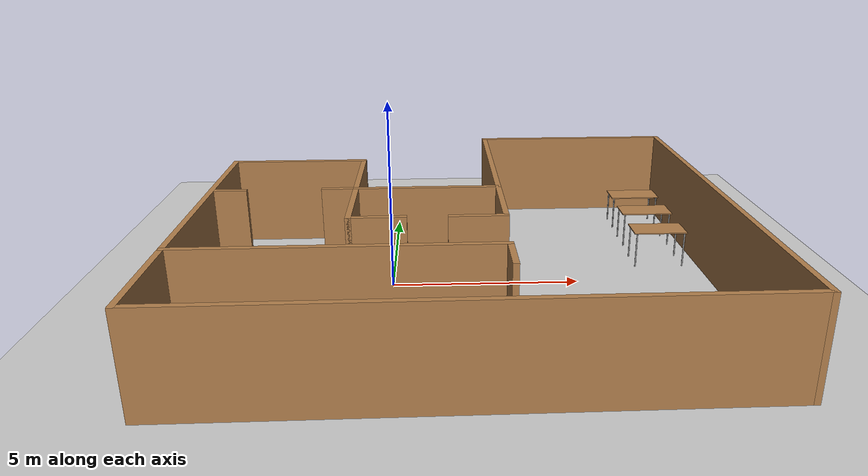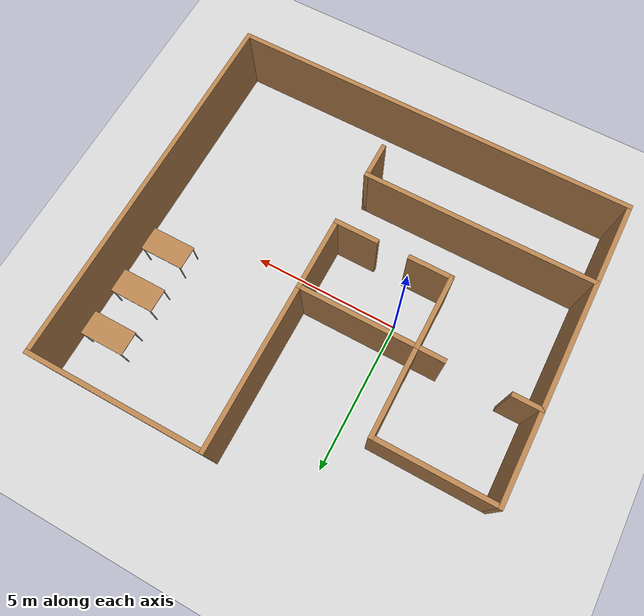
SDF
<sdf version="1.6">
 <world name="default">
  <model name="ground_plane">
   <static>1</static>
   <link name="link">
    <collision name="collision">
     <geometry><plane><normal>0 0 1</normal><size>100 100</size></plane></geometry>
     <surface><friction><ode><mu>100</mu><mu2>50</mu2></ode></friction></surface>
    </collision>
    <visual name="visual">
     <cast_shadows>0</cast_shadows>
     <geometry><plane><normal>0 0 1</normal><size>100 100</size></plane></geometry>
     <material>
      <script><uri>file://media/materials/scripts/gazebo.material</uri><name>Gazebo/Grey</name></script>
     </material>
    </visual>
   </link>
  </model>
  <model name="my_room">
   <link name="Wall_0">
    <pose>-4.84997 3.67511 0 0 -0 3.14154</pose>
    <visual name="Wall_0_Visual">
     <pose>0 0 1.25 0 -0 0</pose>
     <geometry><box><size>4 0.15 2.5</size></box></geometry>
     <material>
      <script><uri>file://media/materials/scripts/gazebo.material</uri><name>Gazebo/Wood</name></script>
      <ambient>1 1 1 1</ambient>
      <shader type="pixel"/>
      <diffuse>1 1 1 1</diffuse>
      <specular>0.2 0.2 0.2 1</specular>
      <emissive>0 0 0 1</emissive>
     </material>
     <meta><layer>0</layer></meta>
    </visual>
    <collision name="Wall_0_Collision">
     <pose>0 0 1.25 0 -0 0</pose>
     <geometry><box><size>4 0.15 2.5</size></box></geometry>
     <surface>
      <friction>
       <ode><mu>1</mu><mu2>1</mu2><fdir1>0 0 0</fdir1><slip1>0</slip1><slip2>0</slip2></ode>
       <torsional>
        <coefficient>1</coefficient>
        <patch_radius>0</patch_radius>
        <surface_radius>0</surface_radius>
        <use_patch_radius>1</use_patch_radius>
        <ode><slip>0</slip></ode>
       </torsional>
      </friction>
      <bounce><restitution_coefficient>0</restitution_coefficient><threshold>1e+06</threshold></bounce>
      <contact>
       <collide_without_contact>0</collide_without_contact>
       <collide_without_contact_bitmask>1</collide_without_contact_bitmask>
       <collide_bitmask>1</collide_bitmask>
       <ode>
        <soft_cfm>0</soft_cfm>
        <soft_erp>0.2</soft_erp>
        <kp>1e+13</kp>
        <kd>1</kd>
        <max_vel>0.01</max_vel>
        <min_depth>0</min_depth>
       </ode>
       <bullet>
        <split_impulse>1</split_impulse>
        <split_impulse_penetration_threshold>-0.01</split_impulse_penetration_threshold>
        <soft_cfm>0</soft_cfm>
        <soft_erp>0.2</soft_erp>
        <kp>1e+13</kp>
        <kd>1</kd>
       </bullet>
      </contact>
     </surface>
    </collision>
   </link>
   <link name="Wall_1">
    <pose>-6.7749 -1.24978 0 0 0 -1.5708</pose>
    <inertial>
     <mass>1</mass>
     <inertia><ixx>1</ixx><ixy>0</ixy><ixz>0</ixz><iyy>1</iyy><iyz>0</iyz><izz>1</izz></inertia>
    </inertial>
    <visual name="Wall_1_Visual">
     <pose>0 0 1.25 0 -0 0</pose>
     <geometry><box><size>10 0.15 2.5</size></box></geometry>
     <material>
      <script><uri>file://media/materials/scripts/gazebo.material</uri><name>Gazebo/Wood</name></script>
      <ambient>1 1 0 1</ambient>
      <shader type="pixel"><normal_map>__default__</normal_map></shader>
      <diffuse>1 1 1 1</diffuse>
      <specular>0.2 0.2 0.2 1</specular>
      <emissive>0 0 0 1</emissive>
     </material>
     <meta><layer>0</layer></meta>
    </visual>
    <collision name="Wall_1_Collision">
     <pose>0 0 1.25 0 -0 0</pose>
     <geometry><box><size>10 0.15 2.5</size></box></geometry>
     <surface>
      <friction>
       <ode><mu>1</mu><mu2>1</mu2><fdir1>0 0 0</fdir1><slip1>0</slip1><slip2>0</slip2></ode>
       <torsional>
        <coefficient>1</coefficient>
        <patch_radius>0</patch_radius>
        <surface_radius>0</surface_radius>
        <use_patch_radius>1</use_patch_radius>
        <ode><slip>0</slip></ode>
       </torsional>
      </friction>
      <bounce><restitution_coefficient>0</restitution_coefficient><threshold>1e+06</threshold></bounce>
      <contact>
       <collide_without_contact>0</collide_without_contact>
       <collide_without_contact_bitmask>1</collide_without_contact_bitmask>
       <collide_bitmask>1</collide_bitmask>
       <ode>
        <soft_cfm>0</soft_cfm>
        <soft_erp>0.2</soft_erp>
        <kp>1e+13</kp>
        <kd>1</kd>
        <max_vel>0.01</max_vel>
        <min_depth>0</min_depth>
       </ode>
       <bullet>
        <split_impulse>1</split_impulse>
        <split_impulse_penetration_threshold>-0.01</split_impulse_penetration_threshold>
        <soft_cfm>0</soft_cfm>
        <soft_erp>0.2</soft_erp>
        <kp>1e+13</kp>
        <kd>1</kd>
       </bullet>
      </contact>
     </surface>
    </collision>
   </link>
   <link name="Wall_11">
    <pose>-2.92503 2.25 0 0 0 -1.5708</pose>
    <visual name="Wall_11_Visual">
     <pose>0 0 1.25 0 -0 0</pose>
     <geometry><box><size>3 0.15 2.5</size></box></geometry>
     <material>
      <script><uri>file://media/materials/scripts/gazebo.material</uri><name>Gazebo/Wood</name></script>
      <ambient>1 1 1 1</ambient>
      <shader type="pixel"/>
      <diffuse>1 1 1 1</diffuse>
      <specular>0.2 0.2 0.2 1</specular>
      <emissive>0 0 0 1</emissive>
     </material>
     <meta><layer>0</layer></meta>
    </visual>
    <collision name="Wall_11_Collision">
     <pose>0 0 1.25 0 -0 0</pose>
     <geometry><box><size>3 0.15 2.5</size></box></geometry>
     <surface>
      <friction>
       <ode><mu>1</mu><mu2>1</mu2><fdir1>0 0 0</fdir1><slip1>0</slip1><slip2>0</slip2></ode>
       <torsional>
        <coefficient>1</coefficient>
        <patch_radius>0</patch_radius>
        <surface_radius>0</surface_radius>
        <use_patch_radius>1</use_patch_radius>
        <ode><slip>0</slip></ode>
       </torsional>
      </friction>
      <bounce><restitution_coefficient>0</restitution_coefficient><threshold>1e+06</threshold></bounce>
      <contact>
       <collide_without_contact>0</collide_without_contact>
       <collide_without_contact_bitmask>1</collide_without_contact_bitmask>
       <collide_bitmask>1</collide_bitmask>
       <ode>
        <soft_cfm>0</soft_cfm>
        <soft_erp>0.2</soft_erp>
        <kp>1e+13</kp>
        <kd>1</kd>
        <max_vel>0.01</max_vel>
        <min_depth>0</min_depth>
       </ode>
       <bullet>
        <split_impulse>1</split_impulse>
        <split_impulse_penetration_threshold>-0.01</split_impulse_penetration_threshold>
        <soft_cfm>0</soft_cfm>
        <soft_erp>0.2</soft_erp>
        <kp>1e+13</kp>
        <kd>1</kd>
       </bullet>
      </contact>
     </surface>
    </collision>
   </link>
   <link name="Wall_12">
    <pose>-1.00003 0.825 0 0 -0 0</pose>
    <visual name="Wall_12_Visual">
     <pose>0 0 1.25 0 -0 0</pose>
     <geometry><box><size>4 0.15 2.5</size></box></geometry>
     <material>
      <script><uri>file://media/materials/scripts/gazebo.material</uri><name>Gazebo/Wood</name></script>
      <ambient>1 1 1 1</ambient>
      <shader type="pixel"/>
      <diffuse>1 1 1 1</diffuse>
      <specular>0.2 0.2 0.2 1</specular>
      <emissive>0 0 0 1</emissive>
     </material>
     <meta><layer>0</layer></meta>
    </visual>
    <collision name="Wall_12_Collision">
     <pose>0 0 1.25 0 -0 0</pose>
     <geometry><box><size>4 0.15 2.5</size></box></geometry>
     <surface>
      <friction>
       <ode><mu>1</mu><mu2>1</mu2><fdir1>0 0 0</fdir1><slip1>0</slip1><slip2>0</slip2></ode>
       <torsional>
        <coefficient>1</coefficient>
        <patch_radius>0</patch_radius>
        <surface_radius>0</surface_radius>
        <use_patch_radius>1</use_patch_radius>
        <ode><slip>0</slip></ode>
       </torsional>
      </friction>
      <bounce><restitution_coefficient>0</restitution_coefficient><threshold>1e+06</threshold></bounce>
      <contact>
       <collide_without_contact>0</collide_without_contact>
       <collide_without_contact_bitmask>1</collide_without_contact_bitmask>
       <collide_bitmask>1</collide_bitmask>
       <ode>
        <soft_cfm>0</soft_cfm>
        <soft_erp>0.2</soft_erp>
        <kp>1e+13</kp>
        <kd>1</kd>
        <max_vel>0.01</max_vel>
        <min_depth>0</min_depth>
       </ode>
       <bullet>
        <split_impulse>1</split_impulse>
        <split_impulse_penetration_threshold>-0.01</split_impulse_penetration_threshold>
        <soft_cfm>0</soft_cfm>
        <soft_erp>0.2</soft_erp>
        <kp>1e+13</kp>
        <kd>1</kd>
       </bullet>
      </contact>
     </surface>
    </collision>
   </link>
   <link name="Wall_13">
    <pose>0.924969 3.5 0 0 -0 1.5708</pose>
    <visual name="Wall_13_Visual">
     <pose>0 0 1.25 0 -0 0</pose>
     <geometry><box><size>5.5 0.15 2.5</size></box></geometry>
     <material>
      <script><uri>file://media/materials/scripts/gazebo.material</uri><name>Gazebo/Wood</name></script>
      <ambient>1 1 1 1</ambient>
      <shader type="pixel"/>
      <diffuse>1 1 1 1</diffuse>
      <specular>0.2 0.2 0.2 1</specular>
      <emissive>0 0 0 1</emissive>
     </material>
     <meta><layer>0</layer></meta>
    </visual>
    <collision name="Wall_13_Collision">
     <pose>0 0 1.25 0 -0 0</pose>
     <geometry><box><size>5.5 0.15 2.5</size></box></geometry>
     <surface>
      <friction>
       <ode><mu>1</mu><mu2>1</mu2><fdir1>0 0 0</fdir1><slip1>0</slip1><slip2>0</slip2></ode>
       <torsional>
        <coefficient>1</coefficient>
        <patch_radius>0</patch_radius>
        <surface_radius>0</surface_radius>
        <use_patch_radius>1</use_patch_radius>
        <ode><slip>0</slip></ode>
       </torsional>
      </friction>
      <bounce><restitution_coefficient>0</restitution_coefficient><threshold>1e+06</threshold></bounce>
      <contact>
       <collide_without_contact>0</collide_without_contact>
       <collide_without_contact_bitmask>1</collide_without_contact_bitmask>
       <collide_bitmask>1</collide_bitmask>
       <ode>
        <soft_cfm>0</soft_cfm>
        <soft_erp>0.2</soft_erp>
        <kp>1e+13</kp>
        <kd>1</kd>
        <max_vel>0.01</max_vel>
        <min_depth>0</min_depth>
       </ode>
       <bullet>
        <split_impulse>1</split_impulse>
        <split_impulse_penetration_threshold>-0.01</split_impulse_penetration_threshold>
        <soft_cfm>0</soft_cfm>
        <soft_erp>0.2</soft_erp>
        <kp>1e+13</kp>
        <kd>1</kd>
       </bullet>
      </contact>
     </surface>
    </collision>
   </link>
   <link name="Wall_14">
    <pose>3.84997 6.175 0 0 -0 0</pose>
    <inertial>
     <mass>1</mass>
     <inertia><ixx>1</ixx><ixy>0</ixy><ixz>0</ixz><iyy>1</iyy><iyz>0</iyz><izz>1</izz></inertia>
    </inertial>
    <visual name="Wall_14_Visual">
     <pose>0 0 1.25 0 -0 0</pose>
     <geometry><box><size>6 0.15 2.5</size></box></geometry>
     <material>
      <script><uri>file://media/materials/scripts/gazebo.material</uri><name>Gazebo/Wood</name></script>
      <ambient>0 1 1 1</ambient>
      <shader type="pixel"><normal_map>__default__</normal_map></shader>
      <diffuse>1 1 1 1</diffuse>
      <specular>0.2 0.2 0.2 1</specular>
      <emissive>0 0 0 1</emissive>
     </material>
     <meta><layer>0</layer></meta>
    </visual>
    <collision name="Wall_14_Collision">
     <pose>0 0 1.25 0 -0 0</pose>
     <geometry><box><size>6 0.15 2.5</size></box></geometry>
     <surface>
      <friction>
       <ode><mu>1</mu><mu2>1</mu2><fdir1>0 0 0</fdir1><slip1>0</slip1><slip2>0</slip2></ode>
       <torsional>
        <coefficient>1</coefficient>
        <patch_radius>0</patch_radius>
        <surface_radius>0</surface_radius>
        <use_patch_radius>1</use_patch_radius>
        <ode><slip>0</slip></ode>
       </torsional>
      </friction>
      <bounce><restitution_coefficient>0</restitution_coefficient><threshold>1e+06</threshold></bounce>
      <contact>
       <collide_without_contact>0</collide_without_contact>
       <collide_without_contact_bitmask>1</collide_without_contact_bitmask>
       <collide_bitmask>1</collide_bitmask>
       <ode>
        <soft_cfm>0</soft_cfm>
        <soft_erp>0.2</soft_erp>
        <kp>1e+13</kp>
        <kd>1</kd>
        <max_vel>0.01</max_vel>
        <min_depth>0</min_depth>
       </ode>
       <bullet>
        <split_impulse>1</split_impulse>
        <split_impulse_penetration_threshold>-0.01</split_impulse_penetration_threshold>
        <soft_cfm>0</soft_cfm>
        <soft_erp>0.2</soft_erp>
        <kp>1e+13</kp>
        <kd>1</kd>
       </bullet>
      </contact>
     </surface>
    </collision>
   </link>
   <link name="Wall_15">
    <pose>6.77497 0 0 0 0 -1.5708</pose>
    <inertial>
     <mass>1</mass>
     <inertia><ixx>1</ixx><ixy>0</ixy><ixz>0</ixz><iyy>1</iyy><iyz>0</iyz><izz>1</izz></inertia>
    </inertial>
    <visual name="Wall_15_Visual">
     <pose>0 0 1.25 0 -0 0</pose>
     <geometry><box><size>12.5 0.15 2.5</size></box></geometry>
     <material>
      <script><uri>file://media/materials/scripts/gazebo.material</uri><name>Gazebo/Wood</name></script>
      <ambient>0 1 0 1</ambient>
      <shader type="pixel"><normal_map>__default__</normal_map></shader>
      <diffuse>1 1 1 1</diffuse>
      <specular>0.2 0.2 0.2 1</specular>
      <emissive>0 0 0 1</emissive>
     </material>
     <meta><layer>0</layer></meta>
    </visual>
    <collision name="Wall_15_Collision">
     <pose>0 0 1.25 0 -0 0</pose>
     <geometry><box><size>12.5 0.15 2.5</size></box></geometry>
     <surface>
      <friction>
       <ode><mu>1</mu><mu2>1</mu2><fdir1>0 0 0</fdir1><slip1>0</slip1><slip2>0</slip2></ode>
       <torsional>
        <coefficient>1</coefficient>
        <patch_radius>0</patch_radius>
        <surface_radius>0</surface_radius>
        <use_patch_radius>1</use_patch_radius>
        <ode><slip>0</slip></ode>
       </torsional>
      </friction>
      <bounce><restitution_coefficient>0</restitution_coefficient><threshold>1e+06</threshold></bounce>
      <contact>
       <collide_without_contact>0</collide_without_contact>
       <collide_without_contact_bitmask>1</collide_without_contact_bitmask>
       <collide_bitmask>1</collide_bitmask>
       <ode>
        <soft_cfm>0</soft_cfm>
        <soft_erp>0.2</soft_erp>
        <kp>1e+13</kp>
        <kd>1</kd>
        <max_vel>0.01</max_vel>
        <min_depth>0</min_depth>
       </ode>
       <bullet>
        <split_impulse>1</split_impulse>
        <split_impulse_penetration_threshold>-0.01</split_impulse_penetration_threshold>
        <soft_cfm>0</soft_cfm>
        <soft_erp>0.2</soft_erp>
        <kp>1e+13</kp>
        <kd>1</kd>
       </bullet>
      </contact>
     </surface>
    </collision>
   </link>
   <link name="Wall_16">
    <pose>3.4e-05 -6.17489 0 0 -0 3.14158</pose>
    <inertial>
     <mass>1</mass>
     <inertia><ixx>1</ixx><ixy>0</ixy><ixz>0</ixz><iyy>1</iyy><iyz>0</iyz><izz>1</izz></inertia>
    </inertial>
    <visual name="Wall_16_Visual">
     <pose>0 0 1.25 0 -0 0</pose>
     <geometry><box><size>13.6999 0.15 2.5</size></box></geometry>
     <material>
      <script><uri>file://media/materials/scripts/gazebo.material</uri><name>Gazebo/Wood</name></script>
      <ambient>1 0 0 1</ambient>
      <shader type="pixel"><normal_map>__default__</normal_map></shader>
      <diffuse>1 1 1 1</diffuse>
      <specular>0.2 0.2 0.2 1</specular>
      <emissive>0 0 0 1</emissive>
     </material>
     <meta><layer>0</layer></meta>
    </visual>
    <collision name="Wall_16_Collision">
     <pose>0 0 1.25 0 -0 0</pose>
     <geometry><box><size>13.6999 0.15 2.5</size></box></geometry>
     <surface>
      <friction>
       <ode><mu>1</mu><mu2>1</mu2><fdir1>0 0 0</fdir1><slip1>0</slip1><slip2>0</slip2></ode>
       <torsional>
        <coefficient>1</coefficient>
        <patch_radius>0</patch_radius>
        <surface_radius>0</surface_radius>
        <use_patch_radius>1</use_patch_radius>
        <ode><slip>0</slip></ode>
       </torsional>
      </friction>
      <bounce><restitution_coefficient>0</restitution_coefficient><threshold>1e+06</threshold></bounce>
      <contact>
       <collide_without_contact>0</collide_without_contact>
       <collide_without_contact_bitmask>1</collide_without_contact_bitmask>
       <collide_bitmask>1</collide_bitmask>
       <ode>
        <soft_cfm>0</soft_cfm>
        <soft_erp>0.2</soft_erp>
        <kp>1e+13</kp>
        <kd>1</kd>
        <max_vel>0.01</max_vel>
        <min_depth>0</min_depth>
       </ode>
       <bullet>
        <split_impulse>1</split_impulse>
        <split_impulse_penetration_threshold>-0.01</split_impulse_penetration_threshold>
        <soft_cfm>0</soft_cfm>
        <soft_erp>0.2</soft_erp>
        <kp>1e+13</kp>
        <kd>1</kd>
       </bullet>
      </contact>
     </surface>
    </collision>
   </link>
   <link name="Wall_18">
    <pose>-3.35003 0.825 0 0 -0 3.14159</pose>
    <visual name="Wall_18_Visual">
     <pose>0 0 1.25 0 -0 0</pose>
     <geometry><box><size>1 0.15 2.5</size></box></geometry>
     <material>
      <script><uri>file://media/materials/scripts/gazebo.material</uri><name>Gazebo/Wood</name></script>
      <ambient>1 1 1 1</ambient>
      <shader type="pixel"/>
      <diffuse>1 1 1 1</diffuse>
      <specular>0.2 0.2 0.2 1</specular>
      <emissive>0 0 0 1</emissive>
     </material>
     <meta><layer>0</layer></meta>
    </visual>
    <collision name="Wall_18_Collision">
     <pose>0 0 1.25 0 -0 0</pose>
     <geometry><box><size>1 0.15 2.5</size></box></geometry>
     <surface>
      <friction>
       <ode><mu>1</mu><mu2>1</mu2><fdir1>0 0 0</fdir1><slip1>0</slip1><slip2>0</slip2></ode>
       <torsional>
        <coefficient>1</coefficient>
        <patch_radius>0</patch_radius>
        <surface_radius>0</surface_radius>
        <use_patch_radius>1</use_patch_radius>
        <ode><slip>0</slip></ode>
       </torsional>
      </friction>
      <bounce><restitution_coefficient>0</restitution_coefficient><threshold>1e+06</threshold></bounce>
      <contact>
       <collide_without_contact>0</collide_without_contact>
       <collide_without_contact_bitmask>1</collide_without_contact_bitmask>
       <collide_bitmask>1</collide_bitmask>
       <ode>
        <soft_cfm>0</soft_cfm>
        <soft_erp>0.2</soft_erp>
        <kp>1e+13</kp>
        <kd>1</kd>
        <max_vel>0.01</max_vel>
        <min_depth>0</min_depth>
       </ode>
       <bullet>
        <split_impulse>1</split_impulse>
        <split_impulse_penetration_threshold>-0.01</split_impulse_penetration_threshold>
        <soft_cfm>0</soft_cfm>
        <soft_erp>0.2</soft_erp>
        <kp>1e+13</kp>
        <kd>1</kd>
       </bullet>
      </contact>
     </surface>
    </collision>
   </link>
   <link name="Wall_21">
    <pose>-6.33323 0.80256 0 0 -0 0</pose>
    <visual name="Wall_21_Visual">
     <pose>0 0 1.25 0 -0 0</pose>
     <geometry><box><size>1 0.15 2.5</size></box></geometry>
     <material>
      <script><uri>file://media/materials/scripts/gazebo.material</uri><name>Gazebo/Wood</name></script>
      <ambient>1 1 1 1</ambient>
      <shader type="pixel"/>
      <diffuse>1 1 1 1</diffuse>
      <specular>0.2 0.2 0.2 1</specular>
      <emissive>0 0 0 1</emissive>
     </material>
     <meta><layer>0</layer></meta>
    </visual>
    <collision name="Wall_21_Collision">
     <pose>0 0 1.25 0 -0 0</pose>
     <geometry><box><size>1 0.15 2.5</size></box></geometry>
     <surface>
      <friction>
       <ode><mu>1</mu><mu2>1</mu2><fdir1>0 0 0</fdir1><slip1>0</slip1><slip2>0</slip2></ode>
       <torsional>
        <coefficient>1</coefficient>
        <patch_radius>0</patch_radius>
        <surface_radius>0</surface_radius>
        <use_patch_radius>1</use_patch_radius>
        <ode><slip>0</slip></ode>
       </torsional>
      </friction>
      <bounce><restitution_coefficient>0</restitution_coefficient><threshold>1e+06</threshold></bounce>
      <contact>
       <collide_without_contact>0</collide_without_contact>
       <collide_without_contact_bitmask>1</collide_without_contact_bitmask>
       <collide_bitmask>1</collide_bitmask>
       <ode>
        <soft_cfm>0</soft_cfm>
        <soft_erp>0.2</soft_erp>
        <kp>1e+13</kp>
        <kd>1</kd>
        <max_vel>0.01</max_vel>
        <min_depth>0</min_depth>
       </ode>
       <bullet>
        <split_impulse>1</split_impulse>
        <split_impulse_penetration_threshold>-0.01</split_impulse_penetration_threshold>
        <soft_cfm>0</soft_cfm>
        <soft_erp>0.2</soft_erp>
        <kp>1e+13</kp>
        <kd>1</kd>
       </bullet>
      </contact>
     </surface>
    </collision>
   </link>
   <link name="Wall_23">
    <pose>-2.92503 -0.35 0 0 0 -1.5708</pose>
    <visual name="Wall_23_Visual">
     <pose>0 0 1.25 0 -0 0</pose>
     <geometry><box><size>2.5 0.15 2.5</size></box></geometry>
     <material>
      <script><uri>file://media/materials/scripts/gazebo.material</uri><name>Gazebo/Wood</name></script>
      <ambient>1 1 1 1</ambient>
      <shader type="pixel"/>
      <diffuse>1 1 1 1</diffuse>
      <specular>0.2 0.2 0.2 1</specular>
      <emissive>0 0 0 1</emissive>
     </material>
     <meta><layer>0</layer></meta>
    </visual>
    <collision name="Wall_23_Collision">
     <pose>0 0 1.25 0 -0 0</pose>
     <geometry><box><size>2.5 0.15 2.5</size></box></geometry>
     <surface>
      <friction>
       <ode><mu>1</mu><mu2>1</mu2><fdir1>0 0 0</fdir1><slip1>0</slip1><slip2>0</slip2></ode>
       <torsional>
        <coefficient>1</coefficient>
        <patch_radius>0</patch_radius>
        <surface_radius>0</surface_radius>
        <use_patch_radius>1</use_patch_radius>
        <ode><slip>0</slip></ode>
       </torsional>
      </friction>
      <bounce><restitution_coefficient>0</restitution_coefficient><threshold>1e+06</threshold></bounce>
      <contact>
       <collide_without_contact>0</collide_without_contact>
       <collide_without_contact_bitmask>1</collide_without_contact_bitmask>
       <collide_bitmask>1</collide_bitmask>
       <ode>
        <soft_cfm>0</soft_cfm>
        <soft_erp>0.2</soft_erp>
        <kp>1e+13</kp>
        <kd>1</kd>
        <max_vel>0.01</max_vel>
        <min_depth>0</min_depth>
       </ode>
       <bullet>
        <split_impulse>1</split_impulse>
        <split_impulse_penetration_threshold>-0.01</split_impulse_penetration_threshold>
        <soft_cfm>0</soft_cfm>
        <soft_erp>0.2</soft_erp>
        <kp>1e+13</kp>
        <kd>1</kd>
       </bullet>
      </contact>
     </surface>
    </collision>
   </link>
   <link name="Wall_25">
    <pose>0.924969 -0.35 0 0 0 -1.5708</pose>
    <visual name="Wall_25_Visual">
     <pose>0 0 1.25 0 -0 0</pose>
     <geometry><box><size>2.5 0.15 2.5</size></box></geometry>
     <material>
      <script><uri>file://media/materials/scripts/gazebo.material</uri><name>Gazebo/Wood</name></script>
      <ambient>1 1 1 1</ambient>
      <shader type="pixel"/>
      <diffuse>1 1 1 1</diffuse>
      <specular>0.2 0.2 0.2 1</specular>
      <emissive>0 0 0 1</emissive>
     </material>
     <meta><layer>0</layer></meta>
    </visual>
    <collision name="Wall_25_Collision">
     <pose>0 0 1.25 0 -0 0</pose>
     <geometry><box><size>2.5 0.15 2.5</size></box></geometry>
     <surface>
      <friction>
       <ode><mu>1</mu><mu2>1</mu2><fdir1>0 0 0</fdir1><slip1>0</slip1><slip2>0</slip2></ode>
       <torsional>
        <coefficient>1</coefficient>
        <patch_radius>0</patch_radius>
        <surface_radius>0</surface_radius>
        <use_patch_radius>1</use_patch_radius>
        <ode><slip>0</slip></ode>
       </torsional>
      </friction>
      <bounce><restitution_coefficient>0</restitution_coefficient><threshold>1e+06</threshold></bounce>
      <contact>
       <collide_without_contact>0</collide_without_contact>
       <collide_without_contact_bitmask>1</collide_without_contact_bitmask>
       <collide_bitmask>1</collide_bitmask>
       <ode>
        <soft_cfm>0</soft_cfm>
        <soft_erp>0.2</soft_erp>
        <kp>1e+13</kp>
        <kd>1</kd>
        <max_vel>0.01</max_vel>
        <min_depth>0</min_depth>
       </ode>
       <bullet>
        <split_impulse>1</split_impulse>
        <split_impulse_penetration_threshold>-0.01</split_impulse_penetration_threshold>
        <soft_cfm>0</soft_cfm>
        <soft_erp>0.2</soft_erp>
        <kp>1e+13</kp>
        <kd>1</kd>
       </bullet>
      </contact>
     </surface>
    </collision>
   </link>
   <link name="Wall_27">
    <pose>-2.25003 -1.525 0 0 -0 0</pose>
    <visual name="Wall_27_Visual">
     <pose>0 0 1.25 0 -0 0</pose>
     <geometry><box><size>1.5 0.15 2.5</size></box></geometry>
     <material>
      <script><uri>file://media/materials/scripts/gazebo.material</uri><name>Gazebo/Wood</name></script>
      <ambient>1 1 1 1</ambient>
      <shader type="pixel"/>
      <diffuse>1 1 1 1</diffuse>
      <specular>0.2 0.2 0.2 1</specular>
      <emissive>0 0 0 1</emissive>
     </material>
     <meta><layer>0</layer></meta>
    </visual>
    <collision name="Wall_27_Collision">
     <pose>0 0 1.25 0 -0 0</pose>
     <geometry><box><size>1.5 0.15 2.5</size></box></geometry>
     <surface>
      <friction>
       <ode><mu>1</mu><mu2>1</mu2><fdir1>0 0 0</fdir1><slip1>0</slip1><slip2>0</slip2></ode>
       <torsional>
        <coefficient>1</coefficient>
        <patch_radius>0</patch_radius>
        <surface_radius>0</surface_radius>
        <use_patch_radius>1</use_patch_radius>
        <ode><slip>0</slip></ode>
       </torsional>
      </friction>
      <bounce><restitution_coefficient>0</restitution_coefficient><threshold>1e+06</threshold></bounce>
      <contact>
       <collide_without_contact>0</collide_without_contact>
       <collide_without_contact_bitmask>1</collide_without_contact_bitmask>
       <collide_bitmask>1</collide_bitmask>
       <ode>
        <soft_cfm>0</soft_cfm>
        <soft_erp>0.2</soft_erp>
        <kp>1e+13</kp>
        <kd>1</kd>
        <max_vel>0.01</max_vel>
        <min_depth>0</min_depth>
       </ode>
       <bullet>
        <split_impulse>1</split_impulse>
        <split_impulse_penetration_threshold>-0.01</split_impulse_penetration_threshold>
        <soft_cfm>0</soft_cfm>
        <soft_erp>0.2</soft_erp>
        <kp>1e+13</kp>
        <kd>1</kd>
       </bullet>
      </contact>
     </surface>
    </collision>
   </link>
   <link name="Wall_29">
    <pose>0.249969 -1.525 0 0 -0 3.14159</pose>
    <visual name="Wall_29_Visual">
     <pose>0 0 1.25 0 -0 0</pose>
     <geometry><box><size>1.5 0.15 2.5</size></box></geometry>
     <material>
      <script><uri>file://media/materials/scripts/gazebo.material</uri><name>Gazebo/Wood</name></script>
      <ambient>1 1 1 1</ambient>
      <shader type="pixel"/>
      <diffuse>1 1 1 1</diffuse>
      <specular>0.2 0.2 0.2 1</specular>
      <emissive>0 0 0 1</emissive>
     </material>
     <meta><layer>0</layer></meta>
    </visual>
    <collision name="Wall_29_Collision">
     <pose>0 0 1.25 0 -0 0</pose>
     <geometry><box><size>1.5 0.15 2.5</size></box></geometry>
     <surface>
      <friction>
       <ode><mu>1</mu><mu2>1</mu2><fdir1>0 0 0</fdir1><slip1>0</slip1><slip2>0</slip2></ode>
       <torsional>
        <coefficient>1</coefficient>
        <patch_radius>0</patch_radius>
        <surface_radius>0</surface_radius>
        <use_patch_radius>1</use_patch_radius>
        <ode><slip>0</slip></ode>
       </torsional>
      </friction>
      <bounce><restitution_coefficient>0</restitution_coefficient><threshold>1e+06</threshold></bounce>
      <contact>
       <collide_without_contact>0</collide_without_contact>
       <collide_without_contact_bitmask>1</collide_without_contact_bitmask>
       <collide_bitmask>1</collide_bitmask>
       <ode>
        <soft_cfm>0</soft_cfm>
        <soft_erp>0.2</soft_erp>
        <kp>1e+13</kp>
        <kd>1</kd>
        <max_vel>0.01</max_vel>
        <min_depth>0</min_depth>
       </ode>
       <bullet>
        <split_impulse>1</split_impulse>
        <split_impulse_penetration_threshold>-0.01</split_impulse_penetration_threshold>
        <soft_cfm>0</soft_cfm>
        <soft_erp>0.2</soft_erp>
        <kp>1e+13</kp>
        <kd>1</kd>
       </bullet>
      </contact>
     </surface>
    </collision>
   </link>
   <link name="Wall_33">
    <pose>-2.95965 -3.37852 0 0 -0 0</pose>
    <inertial>
     <mass>1</mass>
     <inertia><ixx>1</ixx><ixy>0</ixy><ixz>0</ixz><iyy>1</iyy><iyz>0</iyz><izz>1</izz></inertia>
    </inertial>
    <visual name="Wall_33_Visual">
     <pose>0 0 1.25 0 -0 0</pose>
     <geometry><box><size>7.75 0.15 2.5</size></box></geometry>
     <material>
      <script><uri>file://media/materials/scripts/gazebo.material</uri><name>Gazebo/Wood</name></script>
      <ambient>0 0 1 1</ambient>
      <shader type="pixel"><normal_map>__default__</normal_map></shader>
      <diffuse>1 1 1 1</diffuse>
      <specular>0.2 0.2 0.2 1</specular>
      <emissive>0 0 0 1</emissive>
     </material>
     <meta><layer>0</layer></meta>
    </visual>
    <collision name="Wall_33_Collision">
     <pose>0 0 1.25 0 -0 0</pose>
     <geometry><box><size>7.75 0.15 2.5</size></box></geometry>
     <surface>
      <friction>
       <ode><mu>1</mu><mu2>1</mu2><fdir1>0 0 0</fdir1><slip1>0</slip1><slip2>0</slip2></ode>
       <torsional>
        <coefficient>1</coefficient>
        <patch_radius>0</patch_radius>
        <surface_radius>0</surface_radius>
        <use_patch_radius>1</use_patch_radius>
        <ode><slip>0</slip></ode>
       </torsional>
      </friction>
      <bounce><restitution_coefficient>0</restitution_coefficient><threshold>1e+06</threshold></bounce>
      <contact>
       <collide_without_contact>0</collide_without_contact>
       <collide_without_contact_bitmask>1</collide_without_contact_bitmask>
       <collide_bitmask>1</collide_bitmask>
       <ode>
        <soft_cfm>0</soft_cfm>
        <soft_erp>0.2</soft_erp>
        <kp>1e+13</kp>
        <kd>1</kd>
        <max_vel>0.01</max_vel>
        <min_depth>0</min_depth>
       </ode>
       <bullet>
        <split_impulse>1</split_impulse>
        <split_impulse_penetration_threshold>-0.01</split_impulse_penetration_threshold>
        <soft_cfm>0</soft_cfm>
        <soft_erp>0.2</soft_erp>
        <kp>1e+13</kp>
        <kd>1</kd>
       </bullet>
      </contact>
     </surface>
    </collision>
   </link>
   <link name="Wall_34">
    <pose>0.840353 -3.92852 0 0 0 -1.5708</pose>
    <visual name="Wall_34_Visual">
     <pose>0 0 1.25 0 -0 0</pose>
     <geometry><box><size>1.25 0.15 2.5</size></box></geometry>
     <material>
      <script><uri>file://media/materials/scripts/gazebo.material</uri><name>Gazebo/Wood</name></script>
      <ambient>1 1 1 1</ambient>
      <shader type="pixel"/>
      <diffuse>1 1 1 1</diffuse>
      <specular>0.2 0.2 0.2 1</specular>
      <emissive>0 0 0 1</emissive>
     </material>
     <meta><layer>0</layer></meta>
    </visual>
    <collision name="Wall_34_Collision">
     <pose>0 0 1.25 0 -0 0</pose>
     <geometry><box><size>1.25 0.15 2.5</size></box></geometry>
     <surface>
      <friction>
       <ode><mu>1</mu><mu2>1</mu2><fdir1>0 0 0</fdir1><slip1>0</slip1><slip2>0</slip2></ode>
       <torsional>
        <coefficient>1</coefficient>
        <patch_radius>0</patch_radius>
        <surface_radius>0</surface_radius>
        <use_patch_radius>1</use_patch_radius>
        <ode><slip>0</slip></ode>
       </torsional>
      </friction>
      <bounce><restitution_coefficient>0</restitution_coefficient><threshold>1e+06</threshold></bounce>
      <contact>
       <collide_without_contact>0</collide_without_contact>
       <collide_without_contact_bitmask>1</collide_without_contact_bitmask>
       <collide_bitmask>1</collide_bitmask>
       <ode>
        <soft_cfm>0</soft_cfm>
        <soft_erp>0.2</soft_erp>
        <kp>1e+13</kp>
        <kd>1</kd>
        <max_vel>0.01</max_vel>
        <min_depth>0</min_depth>
       </ode>
       <bullet>
        <split_impulse>1</split_impulse>
        <split_impulse_penetration_threshold>-0.01</split_impulse_penetration_threshold>
        <soft_cfm>0</soft_cfm>
        <soft_erp>0.2</soft_erp>
        <kp>1e+13</kp>
        <kd>1</kd>
       </bullet>
      </contact>
     </surface>
    </collision>
   </link>
   <static>1</static>
   <pose>1.95391 0.05172 0 0 -0 0</pose>
  </model>
  <model name="table">
   <static>1</static>
   <link name="link">
    <collision name="surface">
     <pose>0 0 1 0 -0 0</pose>
     <geometry><box><size>1.5 0.8 0.03</size></box></geometry>
     <surface><friction><ode><mu>0.6</mu><mu2>0.6</mu2></ode></friction></surface>
    </collision>
    <visual name="visual1">
     <pose>0 0 1 0 -0 0</pose>
     <geometry><box><size>1.5 0.8 0.03</size></box></geometry>
     <material>
      <script><uri>file://media/materials/scripts/gazebo.material</uri><name>Gazebo/Wood</name></script>
     </material>
    </visual>
    <collision name="front_left_leg">
     <pose>0.68 0.38 0.5 0 -0 0</pose>
     <geometry><cylinder><radius>0.02</radius><length>1</length></cylinder></geometry>
    </collision>
    <visual name="front_left_leg">
     <pose>0.68 0.38 0.5 0 -0 0</pose>
     <geometry><cylinder><radius>0.02</radius><length>1</length></cylinder></geometry>
     <material>
      <script><uri>file://media/materials/scripts/gazebo.material</uri><name>Gazebo/Grey</name></script>
     </material>
    </visual>
    <collision name="front_right_leg">
     <pose>0.68 -0.38 0.5 0 -0 0</pose>
     <geometry><cylinder><radius>0.02</radius><length>1</length></cylinder></geometry>
    </collision>
    <visual name="front_right_leg">
     <pose>0.68 -0.38 0.5 0 -0 0</pose>
     <geometry><cylinder><radius>0.02</radius><length>1</length></cylinder></geometry>
     <material>
      <script><uri>file://media/materials/scripts/gazebo.material</uri><name>Gazebo/Grey</name></script>
     </material>
    </visual>
    <collision name="back_right_leg">
     <pose>-0.68 -0.38 0.5 0 -0 0</pose>
     <geometry><cylinder><radius>0.02</radius><length>1</length></cylinder></geometry>
    </collision>
    <visual name="back_right_leg">
     <pose>-0.68 -0.38 0.5 0 -0 0</pose>
     <geometry><cylinder><radius>0.02</radius><length>1</length></cylinder></geometry>
     <material>
      <script><uri>file://media/materials/scripts/gazebo.material</uri><name>Gazebo/Grey</name></script>
     </material>
    </visual>
    <collision name="back_left_leg">
     <pose>-0.68 0.38 0.5 0 -0 0</pose>
     <geometry><cylinder><radius>0.02</radius><length>1</length></cylinder></geometry>
    </collision>
    <visual name="back_left_leg">
     <pose>-0.68 0.38 0.5 0 -0 0</pose>
     <geometry><cylinder><radius>0.02</radius><length>1</length></cylinder></geometry>
     <material>
      <script><uri>file://media/materials/scripts/gazebo.material</uri><name>Gazebo/Grey</name></script>
     </material>
    </visual>
   </link>
   <pose>7.61318 4.55239 0 0 -0 0</pose>
  </model>
  <model name="table_0">
   <static>1</static>
   <link name="link">
    <collision name="surface">
     <pose>0 0 1 0 -0 0</pose>
     <geometry><box><size>1.5 0.8 0.03</size></box></geometry>
     <surface><friction><ode><mu>0.6</mu><mu2>0.6</mu2></ode></friction></surface>
    </collision>
    <visual name="visual1">
     <pose>0 0 1 0 -0 0</pose>
     <geometry><box><size>1.5 0.8 0.03</size></box></geometry>
     <material>
      <script><uri>file://media/materials/scripts/gazebo.material</uri><name>Gazebo/Wood</name></script>
     </material>
    </visual>
    <collision name="front_left_leg">
     <pose>0.68 0.38 0.5 0 -0 0</pose>
     <geometry><cylinder><radius>0.02</radius><length>1</length></cylinder></geometry>
    </collision>
    <visual name="front_left_leg">
     <pose>0.68 0.38 0.5 0 -0 0</pose>
     <geometry><cylinder><radius>0.02</radius><length>1</length></cylinder></geometry>
     <material>
      <script><uri>file://media/materials/scripts/gazebo.material</uri><name>Gazebo/Grey</name></script>
     </material>
    </visual>
    <collision name="front_right_leg">
     <pose>0.68 -0.38 0.5 0 -0 0</pose>
     <geometry><cylinder><radius>0.02</radius><length>1</length></cylinder></geometry>
    </collision>
    <visual name="front_right_leg">
     <pose>0.68 -0.38 0.5 0 -0 0</pose>
     <geometry><cylinder><radius>0.02</radius><length>1</length></cylinder></geometry>
     <material>
      <script><uri>file://media/materials/scripts/gazebo.material</uri><name>Gazebo/Grey</name></script>
     </material>
    </visual>
    <collision name="back_right_leg">
     <pose>-0.68 -0.38 0.5 0 -0 0</pose>
     <geometry><cylinder><radius>0.02</radius><length>1</length></cylinder></geometry>
    </collision>
    <visual name="back_right_leg">
     <pose>-0.68 -0.38 0.5 0 -0 0</pose>
     <geometry><cylinder><radius>0.02</radius><length>1</length></cylinder></geometry>
     <material>
      <script><uri>file://media/materials/scripts/gazebo.material</uri><name>Gazebo/Grey</name></script>
     </material>
    </visual>
    <collision name="back_left_leg">
     <pose>-0.68 0.38 0.5 0 -0 0</pose>
     <geometry><cylinder><radius>0.02</radius><length>1</length></cylinder></geometry>
    </collision>
    <visual name="back_left_leg">
     <pose>-0.68 0.38 0.5 0 -0 0</pose>
     <geometry><cylinder><radius>0.02</radius><length>1</length></cylinder></geometry>
     <material>
      <script><uri>file://media/materials/scripts/gazebo.material</uri><name>Gazebo/Grey</name></script>
     </material>
    </visual>
   </link>
   <pose>7.58433 2.97201 0 0 -0 0</pose>
  </model>
  <model name="table_1">
   <static>1</static>
   <link name="link">
    <collision name="surface">
     <pose>0 0 1 0 -0 0</pose>
     <geometry><box><size>1.5 0.8 0.03</size></box></geometry>
     <surface><friction><ode><mu>0.6</mu><mu2>0.6</mu2></ode></friction></surface>
    </collision>
    <visual name="visual1">
     <pose>0 0 1 0 -0 0</pose>
     <geometry><box><size>1.5 0.8 0.03</size></box></geometry>
     <material>
      <script><uri>file://media/materials/scripts/gazebo.material</uri><name>Gazebo/Wood</name></script>
     </material>
    </visual>
    <collision name="front_left_leg">
     <pose>0.68 0.38 0.5 0 -0 0</pose>
     <geometry><cylinder><radius>0.02</radius><length>1</length></cylinder></geometry>
    </collision>
    <visual name="front_left_leg">
     <pose>0.68 0.38 0.5 0 -0 0</pose>
     <geometry><cylinder><radius>0.02</radius><length>1</length></cylinder></geometry>
     <material>
      <script><uri>file://media/materials/scripts/gazebo.material</uri><name>Gazebo/Grey</name></script>
     </material>
    </visual>
    <collision name="front_right_leg">
     <pose>0.68 -0.38 0.5 0 -0 0</pose>
     <geometry><cylinder><radius>0.02</radius><length>1</length></cylinder></geometry>
    </collision>
    <visual name="front_right_leg">
     <pose>0.68 -0.38 0.5 0 -0 0</pose>
     <geometry><cylinder><radius>0.02</radius><length>1</length></cylinder></geometry>
     <material>
      <script><uri>file://media/materials/scripts/gazebo.material</uri><name>Gazebo/Grey</name></script>
     </material>
    </visual>
    <collision name="back_right_leg">
     <pose>-0.68 -0.38 0.5 0 -0 0</pose>
     <geometry><cylinder><radius>0.02</radius><length>1</length></cylinder></geometry>
    </collision>
    <visual name="back_right_leg">
     <pose>-0.68 -0.38 0.5 0 -0 0</pose>
     <geometry><cylinder><radius>0.02</radius><length>1</length></cylinder></geometry>
     <material>
      <script><uri>file://media/materials/scripts/gazebo.material</uri><name>Gazebo/Grey</name></script>
     </material>
    </visual>
    <collision name="back_left_leg">
     <pose>-0.68 0.38 0.5 0 -0 0</pose>
     <geometry><cylinder><radius>0.02</radius><length>1</length></cylinder></geometry>
    </collision>
    <visual name="back_left_leg">
     <pose>-0.68 0.38 0.5 0 -0 0</pose>
     <geometry><cylinder><radius>0.02</radius><length>1</length></cylinder></geometry>
     <material>
      <script><uri>file://media/materials/scripts/gazebo.material</uri><name>Gazebo/Grey</name></script>
     </material>
    </visual>
   </link>
   <pose>7.53455 1.32964 0 0 -0 0</pose>
  </model>
 </world>
</sdf>
